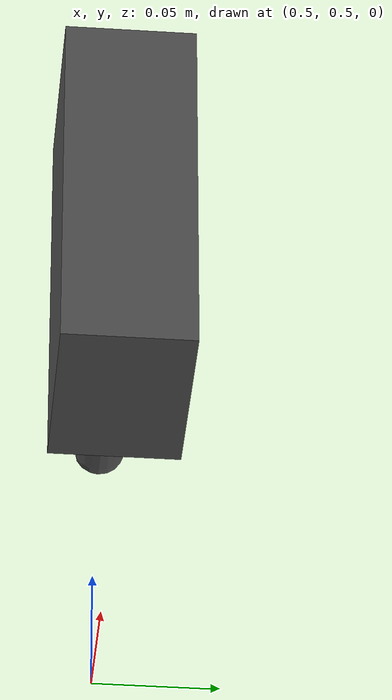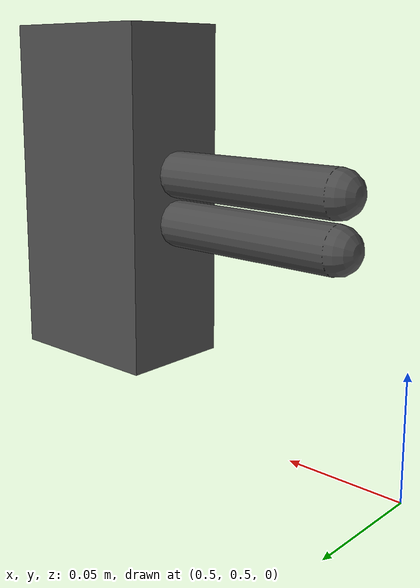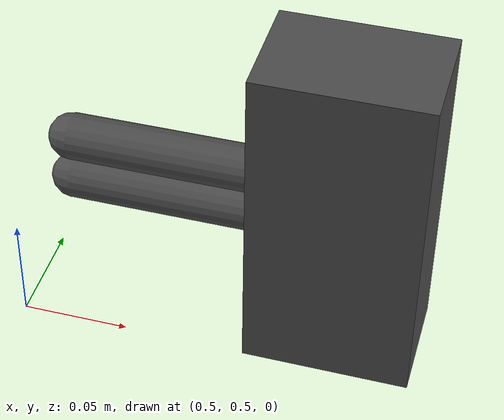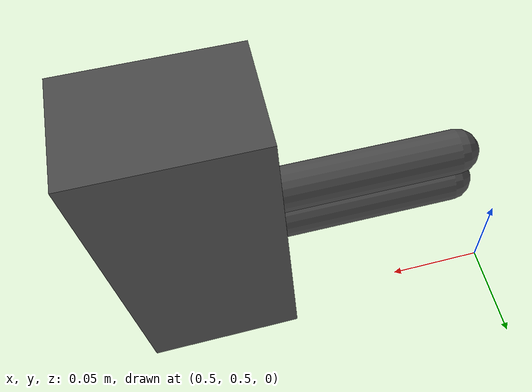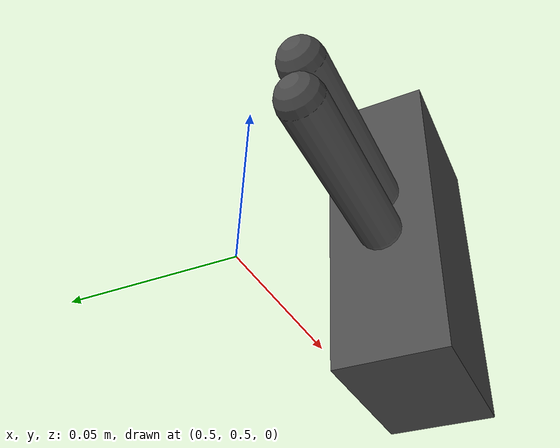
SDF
<?xml version="1.0"?>
<sdf version="1.7">
  <model name="simple_gripper">
    <pose>0.6 0.5 0.1 0 -1.57 1.57</pose>
    <joint name="translate_joint" type="prismatic">
      <parent>world</parent>
      <child>body</child>
      <axis>
        <xyz expressed_in="__model__">0 -1 0</xyz>
      </axis>
      <drake:controller_gains p='10000.0' d='1.0' />
    </joint>
    <link name="body">
      <pose>0 -0.049133 0 0 0 0</pose>
      <inertial>
        <mass>0.988882</mass>
        <inertia>
          <ixx>0.162992</ixx>
          <ixy>0</ixy>
          <ixz>0</ixz>
          <iyy>0.162992</iyy>
          <iyz>0</iyz>
          <izz>0.164814</izz>
        </inertia>
      </inertial>
      <visual name="visual">
        <geometry>
          <box>
            <size>0.146 0.0725 0.049521</size>
          </box>
        </geometry>
        <material>
          <diffuse>0.3 0.3 0.3 0.9</diffuse>
        </material>
      </visual>
    </link>
    <link name="left_finger">
      <!-- Each finger is positioned along the x-axis such that at q=0 the pads
      of each finger barely touch each other. See notes at the top of this
      file. -->
      <pose>-0.0105 0.029 0 0 0 0</pose>
      <inertial>
        <mass>0.05</mass>
        <inertia>
          <ixx>0.16</ixx>
          <ixy>0</ixy>
          <ixz>0</ixz>
          <iyy>0.16</iyy>
          <iyz>0</iyz>
          <izz>0.16</izz>
        </inertia>
      </inertial>
      <visual name="visual">
        <pose>0 0.0 0.0 1.57 0 0</pose>
        <geometry>
          <capsule>
            <radius>0.01</radius>
            <length>0.08</length>
          </capsule>
        </geometry>
        <material>
          <diffuse>0.3 0.3 0.3 0.9</diffuse>
        </material>
      </visual>
    </link>
    <link name="right_finger">
      <!-- Each finger is positioned along the x-axis such that at q=0 the pads
      of each finger barely touch each other. See notes at the top of this
      file. -->
      <pose>0.0105 0.029 0 0 0 0</pose>
      <inertial>
        <mass>0.05</mass>
        <inertia>
          <ixx>0.16</ixx>
          <ixy>0</ixy>
          <ixz>0</ixz>
          <iyy>0.16</iyy>
          <iyz>0</iyz>
          <izz>0.16</izz>
        </inertia>
      </inertial>
      <visual name="visual">
        <pose>0 0.0 0.0 1.57 0 0</pose>
        <geometry>
          <capsule>
            <radius>0.01</radius>
            <length>0.08</length>
          </capsule>
        </geometry>
        <material>
          <diffuse>0.3 0.3 0.3 0.9</diffuse>
        </material>
      </visual>
    </link>
    <joint name="left_slider" type="prismatic">
      <parent>body</parent>
      <child>left_finger</child>
      <axis>
        <xyz>1 0 0</xyz>
      </axis>
      <drake:controller_gains p='10000.0' d='1.0' />
    </joint>
    <joint name="right_slider" type="prismatic">
      <parent>body</parent>
      <child>right_finger</child>
      <drake:mimic joint='left_slider' multiplier='-1' offset='0.0'/>
      <axis>
        <xyz>1 0 0</xyz>
        <!-- Drake attaches an actuator to all joints if the effort limit isn't
        explicitly set to zero. We do NOT want an actuator for this joint due
        to the existence of the mimic tag. -->
        <limit>
          <effort>0</effort>
        </limit>
      </axis>
    </joint>
  </model>
</sdf>
